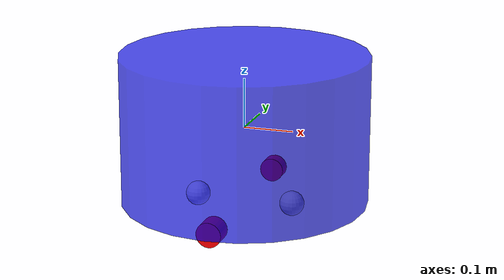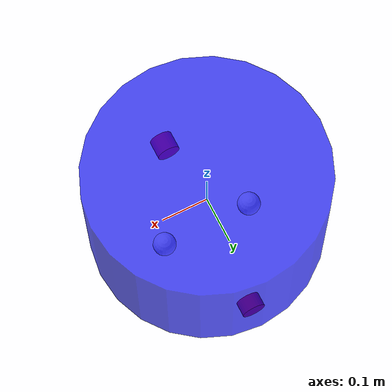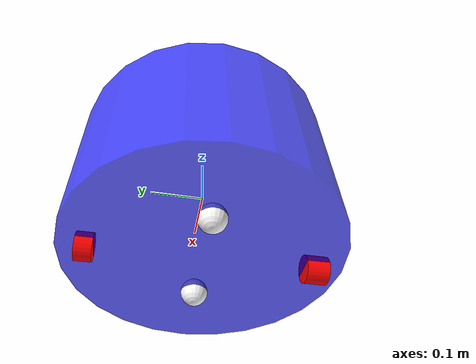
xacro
<?xml version="1.0"?>
<robot name = "my_rb1_robot" xmlns:xacro="http://www.ros.org/wiki/xacro">
    <xacro:property name="halfpi" value="1.57079632679" />

    <gazebo reference="base_link">
        <material>Gazebo/Black</material>
    </gazebo>

    <gazebo>
        <plugin filename="libgazebo_ros_diff_drive.so" name="differential_drive_controller">
            <alwaysOn>true</alwaysOn>
            <updateRate>200</updateRate>
            <leftJoint>lwheel_joint</leftJoint>
            <rightJoint>rwheel_joint</rightJoint>
            <wheelSeparation>0.4</wheelSeparation>
            <wheelAcceleration>0.5</wheelAcceleration>
            <wheelDiameter>0.05</wheelDiameter>
            <torque>10</torque>
            <commandTopic>cmd_vel</commandTopic>
            <odometryTopic>odom</odometryTopic>
            <odometryFrame>odom</odometryFrame>
            <robotBaseFrame>base_link</robotBaseFrame>
        </plugin>
    </gazebo>

    <gazebo reference="front_caster">
        <material>Gazebo/Grey</material>
        <mu1>0</mu1>
        <mu2>0</mu2>
    </gazebo>

    <gazebo reference="back_caster">
        <material>Gazebo/Grey</material>
        <mu1>0</mu1>
        <mu2>0</mu2>
    </gazebo>

    <gazebo reference="left_wheel">
        <material>Gazebo/Red</material>
        <mu1>1</mu1>
        <mu2>1</mu2>
    </gazebo>

    <gazebo reference="right_wheel">
        <material>Gazebo/Red</material>
        <mu1>1</mu1>
        <mu2>1</mu2>
    </gazebo>

    <joint name="laser_joint" type="fixed">
        <parent link="base_link"/>
        <axis xyz = "0 1 0"/>
        <child link="front_laser"/>
        <origin xyz="0.25 0.0 0.075" rpy="${halfpi*2} 0 0" />
    </joint>

    <link name="front_laser">
    </link>

    <gazebo reference="front_laser">
        <sensor type="ray" name="head_hokuyo_sensor">
            <pose>0 0 0 0 0 0</pose>
            <visualize>true</visualize>
            <update_rate>20</update_rate>
            <alwaysOn>true</alwaysOn>
            <ray>
                <scan>
                    <horizontal>
                        <samples>720</samples>
                        <resolution>1</resolution>
                        <min_angle>-${halfpi}</min_angle>
                        <max_angle>${halfpi}</max_angle>
                    </horizontal>
                </scan>
                <range>
                    <min>0.10</min>
                    <max>10.0</max>
                    <resolution>0.01</resolution>
                </range>
                <noise>
                    <type>gaussian</type>
                    <mean>0.0</mean>
                    <stddev>0.01</stddev>
                </noise>
            </ray>
            <plugin name="gazebo_ros_head_hokuyo_controller" filename="libgazebo_ros_laser.so">
                <topicName>/scan</topicName>
                <frameName>front_laser</frameName>
            </plugin>
        </sensor>
    </gazebo>

    <joint name="dummy_joint" type="fixed">
        <parent link="dummy"/>
        <child link="base_link"/>
    </joint>

    <link name = "dummy"/>
    <joint name="base_joint" type="fixed">
        <parent link="base_link"/>
        <child link="base_footprint"/>
        <origin xyz="0 0 -0.15" rpy="0 0 0"/>
    </joint>

    <link name = "base_footprint"/>

    <link name="base_link">
        <inertial>
            <mass value="23"/>
            <inertia ixx="0.578" ixy="0" ixz="0" iyy="0.578" iyz="0" izz="0.78" />
        </inertial>

        <collision>

            <geometry>
                <cylinder length="0.3" radius = "0.25"/>
            </geometry>
        </collision>

        <visual>

            <geometry>
                <cylinder length="0.3" radius = "0.25"/>
            </geometry>
            <material name="Blue">
                <color rgba="0 0 1 0.7" />
            </material>
        </visual>
    </link>

    <joint name="rwheel_joint" type="continuous">
        <parent link="base_link"/>
        <child link="right_wheel"/>
        <origin  rpy="0 0 0" xyz = "0 -0.2 -0.15"/>
        <axis rpy="0 0 0" xyz = "0 1 0" />
        <limit effort="10000" velocity="1000" />
        <joint_properties damping="1.0" friction="1.0" />
    </joint>

    <link name="right_wheel">
        <inertial>
            <origin xyz="0 0 0" rpy="0 0 0" />
            <mass value="0.5" />
            <inertia ixx="0.000115" ixy="0" ixz="0" iyy="0.000156" iyz="0" izz="0.000115" />
        </inertial>

        <collision>
            <origin  rpy="${halfpi} 0 0" xyz="0 0 0"/>
            <geometry>
                <cylinder length="0.03" radius = "0.025"/>
            </geometry>
        </collision>

        <visual>
            <origin  rpy="${halfpi} 0 0" xyz="0 0 0"/>
            <geometry>
                <cylinder length="0.04" radius = "0.025"/>
            </geometry>
            <material name="Red">
                <color rgba="1 0 0 1" />
            </material>
        </visual>
    </link>

    <joint name="lwheel_joint" type="continuous">
        <parent link="base_link"/>
        <child link="left_wheel"/>
        <origin  rpy="0 0 0" xyz = "0 0.2 -0.15"/>
        <axis rpy="0 0 0" xyz = "0 1 0" />
        <limit effort="10000" velocity="1000" />
        <joint_properties damping="1.0" friction="1.0" />
    </joint>

    <link name="left_wheel">
        <inertial>
            <origin xyz="0 0 0" rpy="0 0 0" />
            <mass value="0.5" />
            <inertia ixx="0.000115" ixy="0" ixz="0" iyy="0.000156" iyz="0" izz="0.000115" />
        </inertial>

        <collision>
            <origin  rpy="${halfpi} 0 0" xyz="0 0 0"/>
            <geometry>
                <cylinder length="0.03" radius = "0.025"/>
            </geometry>
        </collision>

        <visual>
            <origin  rpy="${halfpi} 0 0" xyz="0 0 0"/>
            <geometry>
                <cylinder length="0.03" radius = "0.025"/>
            </geometry>
            <material name="Red">
                <color rgba="1 0 0 1" />
            </material>
        </visual>
    </link>

    <joint name="fcaster_joint" type="fixed">
        <parent link="base_link"/>
        <child link="front_caster"/>
        <origin xyz="0.1 0 -0.15" rpy="0 0 0" />
        <joint_properties  friction="0.0" />
    </joint>

    <link name="front_caster">
        <inertial>
            <mass value="0.5" />
            <origin xyz="0 0 0" rpy="0 0 0" />
            <inertia ixx="0.000125" ixy="0" ixz="0" iyy="0.000125" iyz="0" izz="0.000125" />
        </inertial>

        <collision>
            <geometry>
                <sphere radius="0.025"/>
            </geometry>
        </collision>

        <visual>
            <geometry>
                <sphere radius="0.025"/>
            </geometry>
            <material name="Black">
                <color rgba="1 1 1 1" />
            </material>
        </visual>
    </link>

    <joint name="bcaster_joint" type="fixed">
        <parent link="base_link"/>
        <child link="back_caster"/>
        <origin xyz="-0.1 0 -0.15" rpy="0 0 0" />
        <joint_properties  friction="0.0" />
    </joint>

    <link name="back_caster">
        <inertial>
            <mass value="0.5" />
            <origin xyz="0 0 0" rpy="0 0 0" />
            <inertia ixx="0.000125" ixy="0" ixz="0" iyy="0.000125" iyz="0" izz="0.000125" />
        </inertial>

        <collision>
            <geometry>
                <sphere radius="0.025"/>
            </geometry>
        </collision>

        <visual>
            <geometry>
                <sphere radius="0.025"/>
            </geometry>
            <material name="Black">
                <color rgba="1 1 1 1" />
            </material>
        </visual>
    </link>

</robot>
